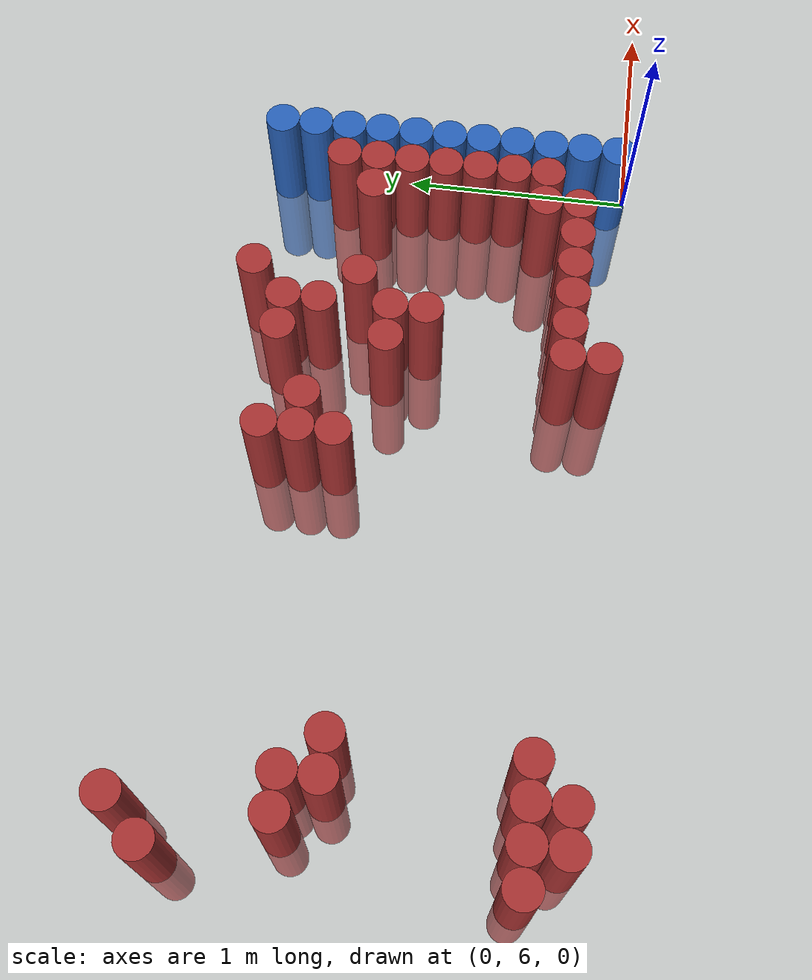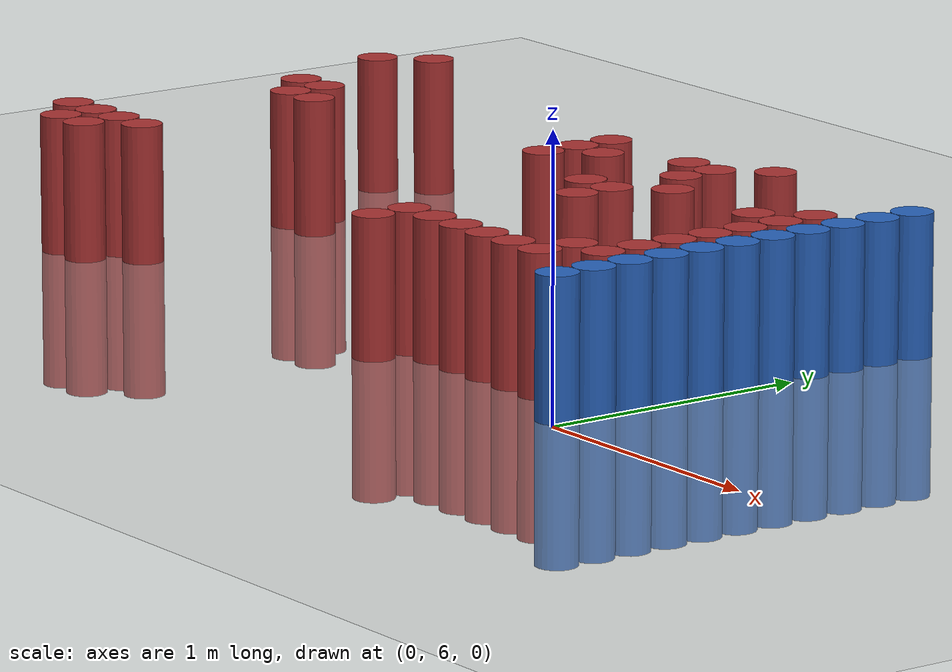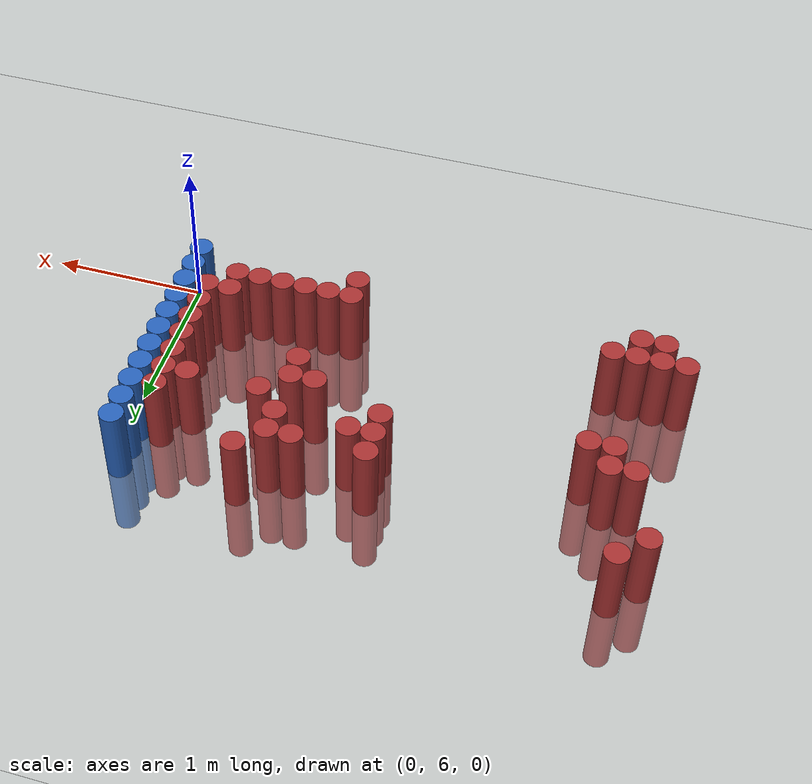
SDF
<sdf version="1.6">
 <world name="default">
  <model name="ground_plane">
   <static>1</static>
   <link name="link">
    <collision name="collision">
     <geometry><plane><normal>0 0 1</normal><size>100 100</size></plane></geometry>
     <surface><friction><ode><mu>100</mu><mu2>50</mu2></ode></friction></surface>
    </collision>
    <visual name="visual">
     <cast_shadows>0</cast_shadows>
     <geometry><plane><normal>0 0 1</normal><size>100 100</size></plane></geometry>
     <material>
      <script><uri>file://media/materials/scripts/gazebo.material</uri><name>Gazebo/Grey</name></script>
     </material>
    </visual>
   </link>
  </model>
  <model name="unit_cylinder_175">
   <static>1</static>
   <pose>-3.225000 6.225000 0.000000 0.000000 0.000000 0.000000</pose>
   <link name="link">
    <inertial>
     <mass>1</mass>
     <inertia><ixx>0.145833</ixx><ixy>0</ixy><ixz>0</ixz><iyy>0.145833</iyy><iyz>0</iyz><izz>0.125</izz></inertia>
    </inertial>
    <collision name="collision">
     <geometry><cylinder><radius>0.075000</radius><length>1</length></cylinder></geometry>
    </collision>
    <visual name="visual">
     <geometry><cylinder><radius>0.075000</radius><length>1</length></cylinder></geometry>
     <material>
      <ambient>0.648000 0.192000 0.192000 1</ambient>
      <diffuse>0.648000 0.192000 0.192000 1</diffuse>
     </material>
     <material>
      <script><name>Gazebo/Grey</name><uri>file://media/materials/scripts/gazebo.material</uri></script>
     </material>
    </visual>
   </link>
  </model>
  <model name="unit_cylinder_176">
   <static>1</static>
   <pose>-3.225000 7.575000 0.000000 0.000000 0.000000 0.000000</pose>
   <link name="link">
    <inertial>
     <mass>1</mass>
     <inertia><ixx>0.145833</ixx><ixy>0</ixy><ixz>0</ixz><iyy>0.145833</iyy><iyz>0</iyz><izz>0.125</izz></inertia>
    </inertial>
    <collision name="collision">
     <geometry><cylinder><radius>0.075000</radius><length>1</length></cylinder></geometry>
    </collision>
    <visual name="visual">
     <geometry><cylinder><radius>0.075000</radius><length>1</length></cylinder></geometry>
     <material>
      <ambient>0.648000 0.192000 0.192000 1</ambient>
      <diffuse>0.648000 0.192000 0.192000 1</diffuse>
     </material>
     <material>
      <script><name>Gazebo/Grey</name><uri>file://media/materials/scripts/gazebo.material</uri></script>
     </material>
    </visual>
   </link>
  </model>
  <model name="unit_cylinder_183">
   <static>1</static>
   <pose>-3.075000 6.075000 0.000000 0.000000 0.000000 0.000000</pose>
   <link name="link">
    <inertial>
     <mass>1</mass>
     <inertia><ixx>0.145833</ixx><ixy>0</ixy><ixz>0</ixz><iyy>0.145833</iyy><iyz>0</iyz><izz>0.125</izz></inertia>
    </inertial>
    <collision name="collision">
     <geometry><cylinder><radius>0.075000</radius><length>1</length></cylinder></geometry>
    </collision>
    <visual name="visual">
     <geometry><cylinder><radius>0.075000</radius><length>1</length></cylinder></geometry>
     <material>
      <ambient>0.648000 0.192000 0.192000 1</ambient>
      <diffuse>0.648000 0.192000 0.192000 1</diffuse>
     </material>
     <material>
      <script><name>Gazebo/Grey</name><uri>file://media/materials/scripts/gazebo.material</uri></script>
     </material>
    </visual>
   </link>
  </model>
  <model name="unit_cylinder_184">
   <static>1</static>
   <pose>-3.075000 6.225000 0.000000 0.000000 0.000000 0.000000</pose>
   <link name="link">
    <inertial>
     <mass>1</mass>
     <inertia><ixx>0.145833</ixx><ixy>0</ixy><ixz>0</ixz><iyy>0.145833</iyy><iyz>0</iyz><izz>0.125</izz></inertia>
    </inertial>
    <collision name="collision">
     <geometry><cylinder><radius>0.075000</radius><length>1</length></cylinder></geometry>
    </collision>
    <visual name="visual">
     <geometry><cylinder><radius>0.075000</radius><length>1</length></cylinder></geometry>
     <material>
      <ambient>0.648000 0.192000 0.192000 1</ambient>
      <diffuse>0.648000 0.192000 0.192000 1</diffuse>
     </material>
     <material>
      <script><name>Gazebo/Grey</name><uri>file://media/materials/scripts/gazebo.material</uri></script>
     </material>
    </visual>
   </link>
  </model>
  <model name="unit_cylinder_185">
   <static>1</static>
   <pose>-3.075000 7.125000 0.000000 0.000000 0.000000 0.000000</pose>
   <link name="link">
    <inertial>
     <mass>1</mass>
     <inertia><ixx>0.145833</ixx><ixy>0</ixy><ixz>0</ixz><iyy>0.145833</iyy><iyz>0</iyz><izz>0.125</izz></inertia>
    </inertial>
    <collision name="collision">
     <geometry><cylinder><radius>0.075000</radius><length>1</length></cylinder></geometry>
    </collision>
    <visual name="visual">
     <geometry><cylinder><radius>0.075000</radius><length>1</length></cylinder></geometry>
     <material>
      <ambient>0.648000 0.192000 0.192000 1</ambient>
      <diffuse>0.648000 0.192000 0.192000 1</diffuse>
     </material>
     <material>
      <script><name>Gazebo/Grey</name><uri>file://media/materials/scripts/gazebo.material</uri></script>
     </material>
    </visual>
   </link>
  </model>
  <model name="unit_cylinder_186">
   <static>1</static>
   <pose>-3.075000 7.725000 0.000000 0.000000 0.000000 0.000000</pose>
   <link name="link">
    <inertial>
     <mass>1</mass>
     <inertia><ixx>0.145833</ixx><ixy>0</ixy><ixz>0</ixz><iyy>0.145833</iyy><iyz>0</iyz><izz>0.125</izz></inertia>
    </inertial>
    <collision name="collision">
     <geometry><cylinder><radius>0.075000</radius><length>1</length></cylinder></geometry>
    </collision>
    <visual name="visual">
     <geometry><cylinder><radius>0.075000</radius><length>1</length></cylinder></geometry>
     <material>
      <ambient>0.648000 0.192000 0.192000 1</ambient>
      <diffuse>0.648000 0.192000 0.192000 1</diffuse>
     </material>
     <material>
      <script><name>Gazebo/Grey</name><uri>file://media/materials/scripts/gazebo.material</uri></script>
     </material>
    </visual>
   </link>
  </model>
  <model name="unit_cylinder_190">
   <static>1</static>
   <pose>-2.925000 6.075000 0.000000 0.000000 0.000000 0.000000</pose>
   <link name="link">
    <inertial>
     <mass>1</mass>
     <inertia><ixx>0.145833</ixx><ixy>0</ixy><ixz>0</ixz><iyy>0.145833</iyy><iyz>0</iyz><izz>0.125</izz></inertia>
    </inertial>
    <collision name="collision">
     <geometry><cylinder><radius>0.075000</radius><length>1</length></cylinder></geometry>
    </collision>
    <visual name="visual">
     <geometry><cylinder><radius>0.075000</radius><length>1</length></cylinder></geometry>
     <material>
      <ambient>0.648000 0.192000 0.192000 1</ambient>
      <diffuse>0.648000 0.192000 0.192000 1</diffuse>
     </material>
     <material>
      <script><name>Gazebo/Grey</name><uri>file://media/materials/scripts/gazebo.material</uri></script>
     </material>
    </visual>
   </link>
  </model>
  <model name="unit_cylinder_191">
   <static>1</static>
   <pose>-2.925000 6.225000 0.000000 0.000000 0.000000 0.000000</pose>
   <link name="link">
    <inertial>
     <mass>1</mass>
     <inertia><ixx>0.145833</ixx><ixy>0</ixy><ixz>0</ixz><iyy>0.145833</iyy><iyz>0</iyz><izz>0.125</izz></inertia>
    </inertial>
    <collision name="collision">
     <geometry><cylinder><radius>0.075000</radius><length>1</length></cylinder></geometry>
    </collision>
    <visual name="visual">
     <geometry><cylinder><radius>0.075000</radius><length>1</length></cylinder></geometry>
     <material>
      <ambient>0.648000 0.192000 0.192000 1</ambient>
      <diffuse>0.648000 0.192000 0.192000 1</diffuse>
     </material>
     <material>
      <script><name>Gazebo/Grey</name><uri>file://media/materials/scripts/gazebo.material</uri></script>
     </material>
    </visual>
   </link>
  </model>
  <model name="unit_cylinder_192">
   <static>1</static>
   <pose>-2.925000 6.975000 0.000000 0.000000 0.000000 0.000000</pose>
   <link name="link">
    <inertial>
     <mass>1</mass>
     <inertia><ixx>0.145833</ixx><ixy>0</ixy><ixz>0</ixz><iyy>0.145833</iyy><iyz>0</iyz><izz>0.125</izz></inertia>
    </inertial>
    <collision name="collision">
     <geometry><cylinder><radius>0.075000</radius><length>1</length></cylinder></geometry>
    </collision>
    <visual name="visual">
     <geometry><cylinder><radius>0.075000</radius><length>1</length></cylinder></geometry>
     <material>
      <ambient>0.648000 0.192000 0.192000 1</ambient>
      <diffuse>0.648000 0.192000 0.192000 1</diffuse>
     </material>
     <material>
      <script><name>Gazebo/Grey</name><uri>file://media/materials/scripts/gazebo.material</uri></script>
     </material>
    </visual>
   </link>
  </model>
  <model name="unit_cylinder_193">
   <static>1</static>
   <pose>-2.925000 7.125000 0.000000 0.000000 0.000000 0.000000</pose>
   <link name="link">
    <inertial>
     <mass>1</mass>
     <inertia><ixx>0.145833</ixx><ixy>0</ixy><ixz>0</ixz><iyy>0.145833</iyy><iyz>0</iyz><izz>0.125</izz></inertia>
    </inertial>
    <collision name="collision">
     <geometry><cylinder><radius>0.075000</radius><length>1</length></cylinder></geometry>
    </collision>
    <visual name="visual">
     <geometry><cylinder><radius>0.075000</radius><length>1</length></cylinder></geometry>
     <material>
      <ambient>0.648000 0.192000 0.192000 1</ambient>
      <diffuse>0.648000 0.192000 0.192000 1</diffuse>
     </material>
     <material>
      <script><name>Gazebo/Grey</name><uri>file://media/materials/scripts/gazebo.material</uri></script>
     </material>
    </visual>
   </link>
  </model>
  <model name="unit_cylinder_195">
   <static>1</static>
   <pose>-2.775000 6.225000 0.000000 0.000000 0.000000 0.000000</pose>
   <link name="link">
    <inertial>
     <mass>1</mass>
     <inertia><ixx>0.145833</ixx><ixy>0</ixy><ixz>0</ixz><iyy>0.145833</iyy><iyz>0</iyz><izz>0.125</izz></inertia>
    </inertial>
    <collision name="collision">
     <geometry><cylinder><radius>0.075000</radius><length>1</length></cylinder></geometry>
    </collision>
    <visual name="visual">
     <geometry><cylinder><radius>0.075000</radius><length>1</length></cylinder></geometry>
     <material>
      <ambient>0.648000 0.192000 0.192000 1</ambient>
      <diffuse>0.648000 0.192000 0.192000 1</diffuse>
     </material>
     <material>
      <script><name>Gazebo/Grey</name><uri>file://media/materials/scripts/gazebo.material</uri></script>
     </material>
    </visual>
   </link>
  </model>
  <model name="unit_cylinder_196">
   <static>1</static>
   <pose>-2.775000 6.975000 0.000000 0.000000 0.000000 0.000000</pose>
   <link name="link">
    <inertial>
     <mass>1</mass>
     <inertia><ixx>0.145833</ixx><ixy>0</ixy><ixz>0</ixz><iyy>0.145833</iyy><iyz>0</iyz><izz>0.125</izz></inertia>
    </inertial>
    <collision name="collision">
     <geometry><cylinder><radius>0.075000</radius><length>1</length></cylinder></geometry>
    </collision>
    <visual name="visual">
     <geometry><cylinder><radius>0.075000</radius><length>1</length></cylinder></geometry>
     <material>
      <ambient>0.648000 0.192000 0.192000 1</ambient>
      <diffuse>0.648000 0.192000 0.192000 1</diffuse>
     </material>
     <material>
      <script><name>Gazebo/Grey</name><uri>file://media/materials/scripts/gazebo.material</uri></script>
     </material>
    </visual>
   </link>
  </model>
  <model name="unit_cylinder_204">
   <static>1</static>
   <pose>-1.575000 7.125000 0.000000 0.000000 0.000000 0.000000</pose>
   <link name="link">
    <inertial>
     <mass>1</mass>
     <inertia><ixx>0.145833</ixx><ixy>0</ixy><ixz>0</ixz><iyy>0.145833</iyy><iyz>0</iyz><izz>0.125</izz></inertia>
    </inertial>
    <collision name="collision">
     <geometry><cylinder><radius>0.075000</radius><length>1</length></cylinder></geometry>
    </collision>
    <visual name="visual">
     <geometry><cylinder><radius>0.075000</radius><length>1</length></cylinder></geometry>
     <material>
      <ambient>0.648000 0.192000 0.192000 1</ambient>
      <diffuse>0.648000 0.192000 0.192000 1</diffuse>
     </material>
     <material>
      <script><name>Gazebo/Grey</name><uri>file://media/materials/scripts/gazebo.material</uri></script>
     </material>
    </visual>
   </link>
  </model>
  <model name="unit_cylinder_205">
   <static>1</static>
   <pose>-1.575000 7.275000 0.000000 0.000000 0.000000 0.000000</pose>
   <link name="link">
    <inertial>
     <mass>1</mass>
     <inertia><ixx>0.145833</ixx><ixy>0</ixy><ixz>0</ixz><iyy>0.145833</iyy><iyz>0</iyz><izz>0.125</izz></inertia>
    </inertial>
    <collision name="collision">
     <geometry><cylinder><radius>0.075000</radius><length>1</length></cylinder></geometry>
    </collision>
    <visual name="visual">
     <geometry><cylinder><radius>0.075000</radius><length>1</length></cylinder></geometry>
     <material>
      <ambient>0.648000 0.192000 0.192000 1</ambient>
      <diffuse>0.648000 0.192000 0.192000 1</diffuse>
     </material>
     <material>
      <script><name>Gazebo/Grey</name><uri>file://media/materials/scripts/gazebo.material</uri></script>
     </material>
    </visual>
   </link>
  </model>
  <model name="unit_cylinder_206">
   <static>1</static>
   <pose>-1.575000 7.425000 0.000000 0.000000 0.000000 0.000000</pose>
   <link name="link">
    <inertial>
     <mass>1</mass>
     <inertia><ixx>0.145833</ixx><ixy>0</ixy><ixz>0</ixz><iyy>0.145833</iyy><iyz>0</iyz><izz>0.125</izz></inertia>
    </inertial>
    <collision name="collision">
     <geometry><cylinder><radius>0.075000</radius><length>1</length></cylinder></geometry>
    </collision>
    <visual name="visual">
     <geometry><cylinder><radius>0.075000</radius><length>1</length></cylinder></geometry>
     <material>
      <ambient>0.648000 0.192000 0.192000 1</ambient>
      <diffuse>0.648000 0.192000 0.192000 1</diffuse>
     </material>
     <material>
      <script><name>Gazebo/Grey</name><uri>file://media/materials/scripts/gazebo.material</uri></script>
     </material>
    </visual>
   </link>
  </model>
  <model name="unit_cylinder_209">
   <static>1</static>
   <pose>-1.425000 7.275000 0.000000 0.000000 0.000000 0.000000</pose>
   <link name="link">
    <inertial>
     <mass>1</mass>
     <inertia><ixx>0.145833</ixx><ixy>0</ixy><ixz>0</ixz><iyy>0.145833</iyy><iyz>0</iyz><izz>0.125</izz></inertia>
    </inertial>
    <collision name="collision">
     <geometry><cylinder><radius>0.075000</radius><length>1</length></cylinder></geometry>
    </collision>
    <visual name="visual">
     <geometry><cylinder><radius>0.075000</radius><length>1</length></cylinder></geometry>
     <material>
      <ambient>0.648000 0.192000 0.192000 1</ambient>
      <diffuse>0.648000 0.192000 0.192000 1</diffuse>
     </material>
     <material>
      <script><name>Gazebo/Grey</name><uri>file://media/materials/scripts/gazebo.material</uri></script>
     </material>
    </visual>
   </link>
  </model>
  <model name="unit_cylinder_219">
   <static>1</static>
   <pose>-1.125000 6.075000 0.000000 0.000000 0.000000 0.000000</pose>
   <link name="link">
    <inertial>
     <mass>1</mass>
     <inertia><ixx>0.145833</ixx><ixy>0</ixy><ixz>0</ixz><iyy>0.145833</iyy><iyz>0</iyz><izz>0.125</izz></inertia>
    </inertial>
    <collision name="collision">
     <geometry><cylinder><radius>0.075000</radius><length>1</length></cylinder></geometry>
    </collision>
    <visual name="visual">
     <geometry><cylinder><radius>0.075000</radius><length>1</length></cylinder></geometry>
     <material>
      <ambient>0.648000 0.192000 0.192000 1</ambient>
      <diffuse>0.648000 0.192000 0.192000 1</diffuse>
     </material>
     <material>
      <script><name>Gazebo/Grey</name><uri>file://media/materials/scripts/gazebo.material</uri></script>
     </material>
    </visual>
   </link>
  </model>
  <model name="unit_cylinder_220">
   <static>1</static>
   <pose>-1.125000 6.225000 0.000000 0.000000 0.000000 0.000000</pose>
   <link name="link">
    <inertial>
     <mass>1</mass>
     <inertia><ixx>0.145833</ixx><ixy>0</ixy><ixz>0</ixz><iyy>0.145833</iyy><iyz>0</iyz><izz>0.125</izz></inertia>
    </inertial>
    <collision name="collision">
     <geometry><cylinder><radius>0.075000</radius><length>1</length></cylinder></geometry>
    </collision>
    <visual name="visual">
     <geometry><cylinder><radius>0.075000</radius><length>1</length></cylinder></geometry>
     <material>
      <ambient>0.648000 0.192000 0.192000 1</ambient>
      <diffuse>0.648000 0.192000 0.192000 1</diffuse>
     </material>
     <material>
      <script><name>Gazebo/Grey</name><uri>file://media/materials/scripts/gazebo.material</uri></script>
     </material>
    </visual>
   </link>
  </model>
  <model name="unit_cylinder_221">
   <static>1</static>
   <pose>-1.125000 6.975000 0.000000 0.000000 0.000000 0.000000</pose>
   <link name="link">
    <inertial>
     <mass>1</mass>
     <inertia><ixx>0.145833</ixx><ixy>0</ixy><ixz>0</ixz><iyy>0.145833</iyy><iyz>0</iyz><izz>0.125</izz></inertia>
    </inertial>
    <collision name="collision">
     <geometry><cylinder><radius>0.075000</radius><length>1</length></cylinder></geometry>
    </collision>
    <visual name="visual">
     <geometry><cylinder><radius>0.075000</radius><length>1</length></cylinder></geometry>
     <material>
      <ambient>0.648000 0.192000 0.192000 1</ambient>
      <diffuse>0.648000 0.192000 0.192000 1</diffuse>
     </material>
     <material>
      <script><name>Gazebo/Grey</name><uri>file://media/materials/scripts/gazebo.material</uri></script>
     </material>
    </visual>
   </link>
  </model>
  <model name="unit_cylinder_222">
   <static>1</static>
   <pose>-1.125000 7.425000 0.000000 0.000000 0.000000 0.000000</pose>
   <link name="link">
    <inertial>
     <mass>1</mass>
     <inertia><ixx>0.145833</ixx><ixy>0</ixy><ixz>0</ixz><iyy>0.145833</iyy><iyz>0</iyz><izz>0.125</izz></inertia>
    </inertial>
    <collision name="collision">
     <geometry><cylinder><radius>0.075000</radius><length>1</length></cylinder></geometry>
    </collision>
    <visual name="visual">
     <geometry><cylinder><radius>0.075000</radius><length>1</length></cylinder></geometry>
     <material>
      <ambient>0.648000 0.192000 0.192000 1</ambient>
      <diffuse>0.648000 0.192000 0.192000 1</diffuse>
     </material>
     <material>
      <script><name>Gazebo/Grey</name><uri>file://media/materials/scripts/gazebo.material</uri></script>
     </material>
    </visual>
   </link>
  </model>
  <model name="unit_cylinder_226">
   <static>1</static>
   <pose>-0.975000 6.225000 0.000000 0.000000 0.000000 0.000000</pose>
   <link name="link">
    <inertial>
     <mass>1</mass>
     <inertia><ixx>0.145833</ixx><ixy>0</ixy><ixz>0</ixz><iyy>0.145833</iyy><iyz>0</iyz><izz>0.125</izz></inertia>
    </inertial>
    <collision name="collision">
     <geometry><cylinder><radius>0.075000</radius><length>1</length></cylinder></geometry>
    </collision>
    <visual name="visual">
     <geometry><cylinder><radius>0.075000</radius><length>1</length></cylinder></geometry>
     <material>
      <ambient>0.648000 0.192000 0.192000 1</ambient>
      <diffuse>0.648000 0.192000 0.192000 1</diffuse>
     </material>
     <material>
      <script><name>Gazebo/Grey</name><uri>file://media/materials/scripts/gazebo.material</uri></script>
     </material>
    </visual>
   </link>
  </model>
  <model name="unit_cylinder_227">
   <static>1</static>
   <pose>-0.975000 6.825000 0.000000 0.000000 0.000000 0.000000</pose>
   <link name="link">
    <inertial>
     <mass>1</mass>
     <inertia><ixx>0.145833</ixx><ixy>0</ixy><ixz>0</ixz><iyy>0.145833</iyy><iyz>0</iyz><izz>0.125</izz></inertia>
    </inertial>
    <collision name="collision">
     <geometry><cylinder><radius>0.075000</radius><length>1</length></cylinder></geometry>
    </collision>
    <visual name="visual">
     <geometry><cylinder><radius>0.075000</radius><length>1</length></cylinder></geometry>
     <material>
      <ambient>0.648000 0.192000 0.192000 1</ambient>
      <diffuse>0.648000 0.192000 0.192000 1</diffuse>
     </material>
     <material>
      <script><name>Gazebo/Grey</name><uri>file://media/materials/scripts/gazebo.material</uri></script>
     </material>
    </visual>
   </link>
  </model>
  <model name="unit_cylinder_228">
   <static>1</static>
   <pose>-0.975000 6.975000 0.000000 0.000000 0.000000 0.000000</pose>
   <link name="link">
    <inertial>
     <mass>1</mass>
     <inertia><ixx>0.145833</ixx><ixy>0</ixy><ixz>0</ixz><iyy>0.145833</iyy><iyz>0</iyz><izz>0.125</izz></inertia>
    </inertial>
    <collision name="collision">
     <geometry><cylinder><radius>0.075000</radius><length>1</length></cylinder></geometry>
    </collision>
    <visual name="visual">
     <geometry><cylinder><radius>0.075000</radius><length>1</length></cylinder></geometry>
     <material>
      <ambient>0.648000 0.192000 0.192000 1</ambient>
      <diffuse>0.648000 0.192000 0.192000 1</diffuse>
     </material>
     <material>
      <script><name>Gazebo/Grey</name><uri>file://media/materials/scripts/gazebo.material</uri></script>
     </material>
    </visual>
   </link>
  </model>
  <model name="unit_cylinder_229">
   <static>1</static>
   <pose>-0.975000 7.275000 0.000000 0.000000 0.000000 0.000000</pose>
   <link name="link">
    <inertial>
     <mass>1</mass>
     <inertia><ixx>0.145833</ixx><ixy>0</ixy><ixz>0</ixz><iyy>0.145833</iyy><iyz>0</iyz><izz>0.125</izz></inertia>
    </inertial>
    <collision name="collision">
     <geometry><cylinder><radius>0.075000</radius><length>1</length></cylinder></geometry>
    </collision>
    <visual name="visual">
     <geometry><cylinder><radius>0.075000</radius><length>1</length></cylinder></geometry>
     <material>
      <ambient>0.648000 0.192000 0.192000 1</ambient>
      <diffuse>0.648000 0.192000 0.192000 1</diffuse>
     </material>
     <material>
      <script><name>Gazebo/Grey</name><uri>file://media/materials/scripts/gazebo.material</uri></script>
     </material>
    </visual>
   </link>
  </model>
  <model name="unit_cylinder_230">
   <static>1</static>
   <pose>-0.975000 7.425000 0.000000 0.000000 0.000000 0.000000</pose>
   <link name="link">
    <inertial>
     <mass>1</mass>
     <inertia><ixx>0.145833</ixx><ixy>0</ixy><ixz>0</ixz><iyy>0.145833</iyy><iyz>0</iyz><izz>0.125</izz></inertia>
    </inertial>
    <collision name="collision">
     <geometry><cylinder><radius>0.075000</radius><length>1</length></cylinder></geometry>
    </collision>
    <visual name="visual">
     <geometry><cylinder><radius>0.075000</radius><length>1</length></cylinder></geometry>
     <material>
      <ambient>0.648000 0.192000 0.192000 1</ambient>
      <diffuse>0.648000 0.192000 0.192000 1</diffuse>
     </material>
     <material>
      <script><name>Gazebo/Grey</name><uri>file://media/materials/scripts/gazebo.material</uri></script>
     </material>
    </visual>
   </link>
  </model>
  <model name="unit_cylinder_238">
   <static>1</static>
   <pose>-0.825000 6.225000 0.000000 0.000000 0.000000 0.000000</pose>
   <link name="link">
    <inertial>
     <mass>1</mass>
     <inertia><ixx>0.145833</ixx><ixy>0</ixy><ixz>0</ixz><iyy>0.145833</iyy><iyz>0</iyz><izz>0.125</izz></inertia>
    </inertial>
    <collision name="collision">
     <geometry><cylinder><radius>0.075000</radius><length>1</length></cylinder></geometry>
    </collision>
    <visual name="visual">
     <geometry><cylinder><radius>0.075000</radius><length>1</length></cylinder></geometry>
     <material>
      <ambient>0.648000 0.192000 0.192000 1</ambient>
      <diffuse>0.648000 0.192000 0.192000 1</diffuse>
     </material>
     <material>
      <script><name>Gazebo/Grey</name><uri>file://media/materials/scripts/gazebo.material</uri></script>
     </material>
    </visual>
   </link>
  </model>
  <model name="unit_cylinder_239">
   <static>1</static>
   <pose>-0.825000 7.125000 0.000000 0.000000 0.000000 0.000000</pose>
   <link name="link">
    <inertial>
     <mass>1</mass>
     <inertia><ixx>0.145833</ixx><ixy>0</ixy><ixz>0</ixz><iyy>0.145833</iyy><iyz>0</iyz><izz>0.125</izz></inertia>
    </inertial>
    <collision name="collision">
     <geometry><cylinder><radius>0.075000</radius><length>1</length></cylinder></geometry>
    </collision>
    <visual name="visual">
     <geometry><cylinder><radius>0.075000</radius><length>1</length></cylinder></geometry>
     <material>
      <ambient>0.648000 0.192000 0.192000 1</ambient>
      <diffuse>0.648000 0.192000 0.192000 1</diffuse>
     </material>
     <material>
      <script><name>Gazebo/Grey</name><uri>file://media/materials/scripts/gazebo.material</uri></script>
     </material>
    </visual>
   </link>
  </model>
  <model name="unit_cylinder_240">
   <static>1</static>
   <pose>-0.825000 7.575000 0.000000 0.000000 0.000000 0.000000</pose>
   <link name="link">
    <inertial>
     <mass>1</mass>
     <inertia><ixx>0.145833</ixx><ixy>0</ixy><ixz>0</ixz><iyy>0.145833</iyy><iyz>0</iyz><izz>0.125</izz></inertia>
    </inertial>
    <collision name="collision">
     <geometry><cylinder><radius>0.075000</radius><length>1</length></cylinder></geometry>
    </collision>
    <visual name="visual">
     <geometry><cylinder><radius>0.075000</radius><length>1</length></cylinder></geometry>
     <material>
      <ambient>0.648000 0.192000 0.192000 1</ambient>
      <diffuse>0.648000 0.192000 0.192000 1</diffuse>
     </material>
     <material>
      <script><name>Gazebo/Grey</name><uri>file://media/materials/scripts/gazebo.material</uri></script>
     </material>
    </visual>
   </link>
  </model>
  <model name="unit_cylinder_246">
   <static>1</static>
   <pose>-0.675000 6.225000 0.000000 0.000000 0.000000 0.000000</pose>
   <link name="link">
    <inertial>
     <mass>1</mass>
     <inertia><ixx>0.145833</ixx><ixy>0</ixy><ixz>0</ixz><iyy>0.145833</iyy><iyz>0</iyz><izz>0.125</izz></inertia>
    </inertial>
    <collision name="collision">
     <geometry><cylinder><radius>0.075000</radius><length>1</length></cylinder></geometry>
    </collision>
    <visual name="visual">
     <geometry><cylinder><radius>0.075000</radius><length>1</length></cylinder></geometry>
     <material>
      <ambient>0.648000 0.192000 0.192000 1</ambient>
      <diffuse>0.648000 0.192000 0.192000 1</diffuse>
     </material>
     <material>
      <script><name>Gazebo/Grey</name><uri>file://media/materials/scripts/gazebo.material</uri></script>
     </material>
    </visual>
   </link>
  </model>
  <model name="unit_cylinder_251">
   <static>1</static>
   <pose>-0.525000 6.225000 0.000000 0.000000 0.000000 0.000000</pose>
   <link name="link">
    <inertial>
     <mass>1</mass>
     <inertia><ixx>0.145833</ixx><ixy>0</ixy><ixz>0</ixz><iyy>0.145833</iyy><iyz>0</iyz><izz>0.125</izz></inertia>
    </inertial>
    <collision name="collision">
     <geometry><cylinder><radius>0.075000</radius><length>1</length></cylinder></geometry>
    </collision>
    <visual name="visual">
     <geometry><cylinder><radius>0.075000</radius><length>1</length></cylinder></geometry>
     <material>
      <ambient>0.648000 0.192000 0.192000 1</ambient>
      <diffuse>0.648000 0.192000 0.192000 1</diffuse>
     </material>
     <material>
      <script><name>Gazebo/Grey</name><uri>file://media/materials/scripts/gazebo.material</uri></script>
     </material>
    </visual>
   </link>
  </model>
  <model name="unit_cylinder_256">
   <static>1</static>
   <pose>-0.375000 6.225000 0.000000 0.000000 0.000000 0.000000</pose>
   <link name="link">
    <inertial>
     <mass>1</mass>
     <inertia><ixx>0.145833</ixx><ixy>0</ixy><ixz>0</ixz><iyy>0.145833</iyy><iyz>0</iyz><izz>0.125</izz></inertia>
    </inertial>
    <collision name="collision">
     <geometry><cylinder><radius>0.075000</radius><length>1</length></cylinder></geometry>
    </collision>
    <visual name="visual">
     <geometry><cylinder><radius>0.075000</radius><length>1</length></cylinder></geometry>
     <material>
      <ambient>0.648000 0.192000 0.192000 1</ambient>
      <diffuse>0.648000 0.192000 0.192000 1</diffuse>
     </material>
     <material>
      <script><name>Gazebo/Grey</name><uri>file://media/materials/scripts/gazebo.material</uri></script>
     </material>
    </visual>
   </link>
  </model>
  <model name="unit_cylinder_257">
   <static>1</static>
   <pose>-0.375000 6.375000 0.000000 0.000000 0.000000 0.000000</pose>
   <link name="link">
    <inertial>
     <mass>1</mass>
     <inertia><ixx>0.145833</ixx><ixy>0</ixy><ixz>0</ixz><iyy>0.145833</iyy><iyz>0</iyz><izz>0.125</izz></inertia>
    </inertial>
    <collision name="collision">
     <geometry><cylinder><radius>0.075000</radius><length>1</length></cylinder></geometry>
    </collision>
    <visual name="visual">
     <geometry><cylinder><radius>0.075000</radius><length>1</length></cylinder></geometry>
     <material>
      <ambient>0.648000 0.192000 0.192000 1</ambient>
      <diffuse>0.648000 0.192000 0.192000 1</diffuse>
     </material>
     <material>
      <script><name>Gazebo/Grey</name><uri>file://media/materials/scripts/gazebo.material</uri></script>
     </material>
    </visual>
   </link>
  </model>
  <model name="unit_cylinder_258">
   <static>1</static>
   <pose>-0.375000 7.125000 0.000000 0.000000 0.000000 0.000000</pose>
   <link name="link">
    <inertial>
     <mass>1</mass>
     <inertia><ixx>0.145833</ixx><ixy>0</ixy><ixz>0</ixz><iyy>0.145833</iyy><iyz>0</iyz><izz>0.125</izz></inertia>
    </inertial>
    <collision name="collision">
     <geometry><cylinder><radius>0.075000</radius><length>1</length></cylinder></geometry>
    </collision>
    <visual name="visual">
     <geometry><cylinder><radius>0.075000</radius><length>1</length></cylinder></geometry>
     <material>
      <ambient>0.648000 0.192000 0.192000 1</ambient>
      <diffuse>0.648000 0.192000 0.192000 1</diffuse>
     </material>
     <material>
      <script><name>Gazebo/Grey</name><uri>file://media/materials/scripts/gazebo.material</uri></script>
     </material>
    </visual>
   </link>
  </model>
  <model name="unit_cylinder_264">
   <static>1</static>
   <pose>-0.225000 6.375000 0.000000 0.000000 0.000000 0.000000</pose>
   <link name="link">
    <inertial>
     <mass>1</mass>
     <inertia><ixx>0.145833</ixx><ixy>0</ixy><ixz>0</ixz><iyy>0.145833</iyy><iyz>0</iyz><izz>0.125</izz></inertia>
    </inertial>
    <collision name="collision">
     <geometry><cylinder><radius>0.075000</radius><length>1</length></cylinder></geometry>
    </collision>
    <visual name="visual">
     <geometry><cylinder><radius>0.075000</radius><length>1</length></cylinder></geometry>
     <material>
      <ambient>0.648000 0.192000 0.192000 1</ambient>
      <diffuse>0.648000 0.192000 0.192000 1</diffuse>
     </material>
     <material>
      <script><name>Gazebo/Grey</name><uri>file://media/materials/scripts/gazebo.material</uri></script>
     </material>
    </visual>
   </link>
  </model>
  <model name="unit_cylinder_265">
   <static>1</static>
   <pose>-0.225000 6.525000 0.000000 0.000000 0.000000 0.000000</pose>
   <link name="link">
    <inertial>
     <mass>1</mass>
     <inertia><ixx>0.145833</ixx><ixy>0</ixy><ixz>0</ixz><iyy>0.145833</iyy><iyz>0</iyz><izz>0.125</izz></inertia>
    </inertial>
    <collision name="collision">
     <geometry><cylinder><radius>0.075000</radius><length>1</length></cylinder></geometry>
    </collision>
    <visual name="visual">
     <geometry><cylinder><radius>0.075000</radius><length>1</length></cylinder></geometry>
     <material>
      <ambient>0.648000 0.192000 0.192000 1</ambient>
      <diffuse>0.648000 0.192000 0.192000 1</diffuse>
     </material>
     <material>
      <script><name>Gazebo/Grey</name><uri>file://media/materials/scripts/gazebo.material</uri></script>
     </material>
    </visual>
   </link>
  </model>
  <model name="unit_cylinder_266">
   <static>1</static>
   <pose>-0.225000 6.675000 0.000000 0.000000 0.000000 0.000000</pose>
   <link name="link">
    <inertial>
     <mass>1</mass>
     <inertia><ixx>0.145833</ixx><ixy>0</ixy><ixz>0</ixz><iyy>0.145833</iyy><iyz>0</iyz><izz>0.125</izz></inertia>
    </inertial>
    <collision name="collision">
     <geometry><cylinder><radius>0.075000</radius><length>1</length></cylinder></geometry>
    </collision>
    <visual name="visual">
     <geometry><cylinder><radius>0.075000</radius><length>1</length></cylinder></geometry>
     <material>
      <ambient>0.648000 0.192000 0.192000 1</ambient>
      <diffuse>0.648000 0.192000 0.192000 1</diffuse>
     </material>
     <material>
      <script><name>Gazebo/Grey</name><uri>file://media/materials/scripts/gazebo.material</uri></script>
     </material>
    </visual>
   </link>
  </model>
  <model name="unit_cylinder_267">
   <static>1</static>
   <pose>-0.225000 6.825000 0.000000 0.000000 0.000000 0.000000</pose>
   <link name="link">
    <inertial>
     <mass>1</mass>
     <inertia><ixx>0.145833</ixx><ixy>0</ixy><ixz>0</ixz><iyy>0.145833</iyy><iyz>0</iyz><izz>0.125</izz></inertia>
    </inertial>
    <collision name="collision">
     <geometry><cylinder><radius>0.075000</radius><length>1</length></cylinder></geometry>
    </collision>
    <visual name="visual">
     <geometry><cylinder><radius>0.075000</radius><length>1</length></cylinder></geometry>
     <material>
      <ambient>0.648000 0.192000 0.192000 1</ambient>
      <diffuse>0.648000 0.192000 0.192000 1</diffuse>
     </material>
     <material>
      <script><name>Gazebo/Grey</name><uri>file://media/materials/scripts/gazebo.material</uri></script>
     </material>
    </visual>
   </link>
  </model>
  <model name="unit_cylinder_268">
   <static>1</static>
   <pose>-0.225000 6.975000 0.000000 0.000000 0.000000 0.000000</pose>
   <link name="link">
    <inertial>
     <mass>1</mass>
     <inertia><ixx>0.145833</ixx><ixy>0</ixy><ixz>0</ixz><iyy>0.145833</iyy><iyz>0</iyz><izz>0.125</izz></inertia>
    </inertial>
    <collision name="collision">
     <geometry><cylinder><radius>0.075000</radius><length>1</length></cylinder></geometry>
    </collision>
    <visual name="visual">
     <geometry><cylinder><radius>0.075000</radius><length>1</length></cylinder></geometry>
     <material>
      <ambient>0.648000 0.192000 0.192000 1</ambient>
      <diffuse>0.648000 0.192000 0.192000 1</diffuse>
     </material>
     <material>
      <script><name>Gazebo/Grey</name><uri>file://media/materials/scripts/gazebo.material</uri></script>
     </material>
    </visual>
   </link>
  </model>
  <model name="unit_cylinder_269">
   <static>1</static>
   <pose>-0.225000 7.125000 0.000000 0.000000 0.000000 0.000000</pose>
   <link name="link">
    <inertial>
     <mass>1</mass>
     <inertia><ixx>0.145833</ixx><ixy>0</ixy><ixz>0</ixz><iyy>0.145833</iyy><iyz>0</iyz><izz>0.125</izz></inertia>
    </inertial>
    <collision name="collision">
     <geometry><cylinder><radius>0.075000</radius><length>1</length></cylinder></geometry>
    </collision>
    <visual name="visual">
     <geometry><cylinder><radius>0.075000</radius><length>1</length></cylinder></geometry>
     <material>
      <ambient>0.648000 0.192000 0.192000 1</ambient>
      <diffuse>0.648000 0.192000 0.192000 1</diffuse>
     </material>
     <material>
      <script><name>Gazebo/Grey</name><uri>file://media/materials/scripts/gazebo.material</uri></script>
     </material>
    </visual>
   </link>
  </model>
  <model name="unit_cylinder_270">
   <static>1</static>
   <pose>-0.225000 7.275000 0.000000 0.000000 0.000000 0.000000</pose>
   <link name="link">
    <inertial>
     <mass>1</mass>
     <inertia><ixx>0.145833</ixx><ixy>0</ixy><ixz>0</ixz><iyy>0.145833</iyy><iyz>0</iyz><izz>0.125</izz></inertia>
    </inertial>
    <collision name="collision">
     <geometry><cylinder><radius>0.075000</radius><length>1</length></cylinder></geometry>
    </collision>
    <visual name="visual">
     <geometry><cylinder><radius>0.075000</radius><length>1</length></cylinder></geometry>
     <material>
      <ambient>0.648000 0.192000 0.192000 1</ambient>
      <diffuse>0.648000 0.192000 0.192000 1</diffuse>
     </material>
     <material>
      <script><name>Gazebo/Grey</name><uri>file://media/materials/scripts/gazebo.material</uri></script>
     </material>
    </visual>
   </link>
  </model>
  <model name="unit_cylinder_283">
   <static>1</static>
   <pose>-0.075000 6.075000 0.000000 0.000000 0.000000 0.000000</pose>
   <link name="link">
    <inertial>
     <mass>1</mass>
     <inertia><ixx>0.145833</ixx><ixy>0</ixy><ixz>0</ixz><iyy>0.145833</iyy><iyz>0</iyz><izz>0.125</izz></inertia>
    </inertial>
    <collision name="collision">
     <geometry><cylinder><radius>0.075000</radius><length>1</length></cylinder></geometry>
    </collision>
    <visual name="visual">
     <geometry><cylinder><radius>0.075000</radius><length>1</length></cylinder></geometry>
     <material>
      <ambient>0.152000 0.379000 0.720000 1</ambient>
      <diffuse>0.152000 0.379000 0.720000 1</diffuse>
     </material>
     <material>
      <script><name>Gazebo/Grey</name><uri>file://media/materials/scripts/gazebo.material</uri></script>
     </material>
    </visual>
   </link>
  </model>
  <model name="unit_cylinder_284">
   <static>1</static>
   <pose>-0.075000 6.225000 0.000000 0.000000 0.000000 0.000000</pose>
   <link name="link">
    <inertial>
     <mass>1</mass>
     <inertia><ixx>0.145833</ixx><ixy>0</ixy><ixz>0</ixz><iyy>0.145833</iyy><iyz>0</iyz><izz>0.125</izz></inertia>
    </inertial>
    <collision name="collision">
     <geometry><cylinder><radius>0.075000</radius><length>1</length></cylinder></geometry>
    </collision>
    <visual name="visual">
     <geometry><cylinder><radius>0.075000</radius><length>1</length></cylinder></geometry>
     <material>
      <ambient>0.152000 0.379000 0.720000 1</ambient>
      <diffuse>0.152000 0.379000 0.720000 1</diffuse>
     </material>
     <material>
      <script><name>Gazebo/Grey</name><uri>file://media/materials/scripts/gazebo.material</uri></script>
     </material>
    </visual>
   </link>
  </model>
  <model name="unit_cylinder_285">
   <static>1</static>
   <pose>-0.075000 6.375000 0.000000 0.000000 0.000000 0.000000</pose>
   <link name="link">
    <inertial>
     <mass>1</mass>
     <inertia><ixx>0.145833</ixx><ixy>0</ixy><ixz>0</ixz><iyy>0.145833</iyy><iyz>0</iyz><izz>0.125</izz></inertia>
    </inertial>
    <collision name="collision">
     <geometry><cylinder><radius>0.075000</radius><length>1</length></cylinder></geometry>
    </collision>
    <visual name="visual">
     <geometry><cylinder><radius>0.075000</radius><length>1</length></cylinder></geometry>
     <material>
      <ambient>0.152000 0.379000 0.720000 1</ambient>
      <diffuse>0.152000 0.379000 0.720000 1</diffuse>
     </material>
     <material>
      <script><name>Gazebo/Grey</name><uri>file://media/materials/scripts/gazebo.material</uri></script>
     </material>
    </visual>
   </link>
  </model>
  <model name="unit_cylinder_286">
   <static>1</static>
   <pose>-0.075000 6.525000 0.000000 0.000000 0.000000 0.000000</pose>
   <link name="link">
    <inertial>
     <mass>1</mass>
     <inertia><ixx>0.145833</ixx><ixy>0</ixy><ixz>0</ixz><iyy>0.145833</iyy><iyz>0</iyz><izz>0.125</izz></inertia>
    </inertial>
    <collision name="collision">
     <geometry><cylinder><radius>0.075000</radius><length>1</length></cylinder></geometry>
    </collision>
    <visual name="visual">
     <geometry><cylinder><radius>0.075000</radius><length>1</length></cylinder></geometry>
     <material>
      <ambient>0.152000 0.379000 0.720000 1</ambient>
      <diffuse>0.152000 0.379000 0.720000 1</diffuse>
     </material>
     <material>
      <script><name>Gazebo/Grey</name><uri>file://media/materials/scripts/gazebo.material</uri></script>
     </material>
    </visual>
   </link>
  </model>
  <model name="unit_cylinder_287">
   <static>1</static>
   <pose>-0.075000 6.675000 0.000000 0.000000 0.000000 0.000000</pose>
   <link name="link">
    <inertial>
     <mass>1</mass>
     <inertia><ixx>0.145833</ixx><ixy>0</ixy><ixz>0</ixz><iyy>0.145833</iyy><iyz>0</iyz><izz>0.125</izz></inertia>
    </inertial>
    <collision name="collision">
     <geometry><cylinder><radius>0.075000</radius><length>1</length></cylinder></geometry>
    </collision>
    <visual name="visual">
     <geometry><cylinder><radius>0.075000</radius><length>1</length></cylinder></geometry>
     <material>
      <ambient>0.152000 0.379000 0.720000 1</ambient>
      <diffuse>0.152000 0.379000 0.720000 1</diffuse>
     </material>
     <material>
      <script><name>Gazebo/Grey</name><uri>file://media/materials/scripts/gazebo.material</uri></script>
     </material>
    </visual>
   </link>
  </model>
  <model name="unit_cylinder_288">
   <static>1</static>
   <pose>-0.075000 6.825000 0.000000 0.000000 0.000000 0.000000</pose>
   <link name="link">
    <inertial>
     <mass>1</mass>
     <inertia><ixx>0.145833</ixx><ixy>0</ixy><ixz>0</ixz><iyy>0.145833</iyy><iyz>0</iyz><izz>0.125</izz></inertia>
    </inertial>
    <collision name="collision">
     <geometry><cylinder><radius>0.075000</radius><length>1</length></cylinder></geometry>
    </collision>
    <visual name="visual">
     <geometry><cylinder><radius>0.075000</radius><length>1</length></cylinder></geometry>
     <material>
      <ambient>0.152000 0.379000 0.720000 1</ambient>
      <diffuse>0.152000 0.379000 0.720000 1</diffuse>
     </material>
     <material>
      <script><name>Gazebo/Grey</name><uri>file://media/materials/scripts/gazebo.material</uri></script>
     </material>
    </visual>
   </link>
  </model>
  <model name="unit_cylinder_289">
   <static>1</static>
   <pose>-0.075000 6.975000 0.000000 0.000000 0.000000 0.000000</pose>
   <link name="link">
    <inertial>
     <mass>1</mass>
     <inertia><ixx>0.145833</ixx><ixy>0</ixy><ixz>0</ixz><iyy>0.145833</iyy><iyz>0</iyz><izz>0.125</izz></inertia>
    </inertial>
    <collision name="collision">
     <geometry><cylinder><radius>0.075000</radius><length>1</length></cylinder></geometry>
    </collision>
    <visual name="visual">
     <geometry><cylinder><radius>0.075000</radius><length>1</length></cylinder></geometry>
     <material>
      <ambient>0.152000 0.379000 0.720000 1</ambient>
      <diffuse>0.152000 0.379000 0.720000 1</diffuse>
     </material>
     <material>
      <script><name>Gazebo/Grey</name><uri>file://media/materials/scripts/gazebo.material</uri></script>
     </material>
    </visual>
   </link>
  </model>
  <model name="unit_cylinder_290">
   <static>1</static>
   <pose>-0.075000 7.125000 0.000000 0.000000 0.000000 0.000000</pose>
   <link name="link">
    <inertial>
     <mass>1</mass>
     <inertia><ixx>0.145833</ixx><ixy>0</ixy><ixz>0</ixz><iyy>0.145833</iyy><iyz>0</iyz><izz>0.125</izz></inertia>
    </inertial>
    <collision name="collision">
     <geometry><cylinder><radius>0.075000</radius><length>1</length></cylinder></geometry>
    </collision>
    <visual name="visual">
     <geometry><cylinder><radius>0.075000</radius><length>1</length></cylinder></geometry>
     <material>
      <ambient>0.152000 0.379000 0.720000 1</ambient>
      <diffuse>0.152000 0.379000 0.720000 1</diffuse>
     </material>
     <material>
      <script><name>Gazebo/Grey</name><uri>file://media/materials/scripts/gazebo.material</uri></script>
     </material>
    </visual>
   </link>
  </model>
  <model name="unit_cylinder_291">
   <static>1</static>
   <pose>-0.075000 7.275000 0.000000 0.000000 0.000000 0.000000</pose>
   <link name="link">
    <inertial>
     <mass>1</mass>
     <inertia><ixx>0.145833</ixx><ixy>0</ixy><ixz>0</ixz><iyy>0.145833</iyy><iyz>0</iyz><izz>0.125</izz></inertia>
    </inertial>
    <collision name="collision">
     <geometry><cylinder><radius>0.075000</radius><length>1</length></cylinder></geometry>
    </collision>
    <visual name="visual">
     <geometry><cylinder><radius>0.075000</radius><length>1</length></cylinder></geometry>
     <material>
      <ambient>0.152000 0.379000 0.720000 1</ambient>
      <diffuse>0.152000 0.379000 0.720000 1</diffuse>
     </material>
     <material>
      <script><name>Gazebo/Grey</name><uri>file://media/materials/scripts/gazebo.material</uri></script>
     </material>
    </visual>
   </link>
  </model>
  <model name="unit_cylinder_292">
   <static>1</static>
   <pose>-0.075000 7.425000 0.000000 0.000000 0.000000 0.000000</pose>
   <link name="link">
    <inertial>
     <mass>1</mass>
     <inertia><ixx>0.145833</ixx><ixy>0</ixy><ixz>0</ixz><iyy>0.145833</iyy><iyz>0</iyz><izz>0.125</izz></inertia>
    </inertial>
    <collision name="collision">
     <geometry><cylinder><radius>0.075000</radius><length>1</length></cylinder></geometry>
    </collision>
    <visual name="visual">
     <geometry><cylinder><radius>0.075000</radius><length>1</length></cylinder></geometry>
     <material>
      <ambient>0.152000 0.379000 0.720000 1</ambient>
      <diffuse>0.152000 0.379000 0.720000 1</diffuse>
     </material>
     <material>
      <script><name>Gazebo/Grey</name><uri>file://media/materials/scripts/gazebo.material</uri></script>
     </material>
    </visual>
   </link>
  </model>
  <model name="unit_cylinder_293">
   <static>1</static>
   <pose>-0.075000 7.575000 0.000000 0.000000 0.000000 0.000000</pose>
   <link name="link">
    <inertial>
     <mass>1</mass>
     <inertia><ixx>0.145833</ixx><ixy>0</ixy><ixz>0</ixz><iyy>0.145833</iyy><iyz>0</iyz><izz>0.125</izz></inertia>
    </inertial>
    <collision name="collision">
     <geometry><cylinder><radius>0.075000</radius><length>1</length></cylinder></geometry>
    </collision>
    <visual name="visual">
     <geometry><cylinder><radius>0.075000</radius><length>1</length></cylinder></geometry>
     <material>
      <ambient>0.152000 0.379000 0.720000 1</ambient>
      <diffuse>0.152000 0.379000 0.720000 1</diffuse>
     </material>
     <material>
      <script><name>Gazebo/Grey</name><uri>file://media/materials/scripts/gazebo.material</uri></script>
     </material>
    </visual>
   </link>
  </model>
 </world>
</sdf>
